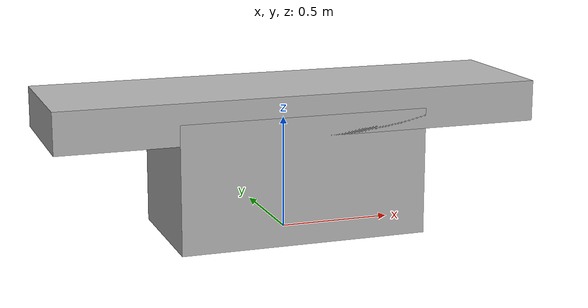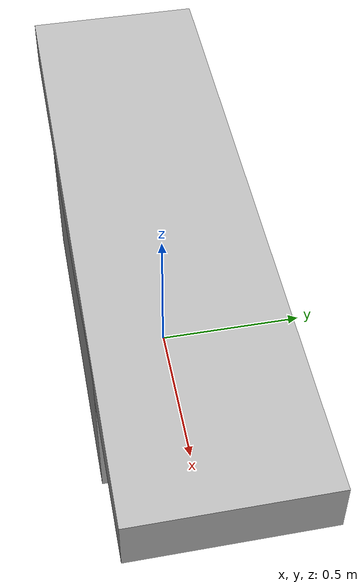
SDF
<?xml version="1.0" encoding="UTF-8"?>
<sdf version="1.4">
   <model name="simple_surgical_bed">
      <static>true</static>
      <link name="bed_slab">
         <pose>0 0 .56 0 0 0</pose>
         <collision name="bed_slab_collision">
            <geometry>
               <box>
                  <size>2.14 .6 .18</size>
               </box>
            </geometry>
         </collision>
         <visual name="bed_slab_visual">
            <geometry>
               <box>
                  <size>2.14 .6 .18</size>
               </box>
            </geometry>
         </visual>
      </link>
      <link name="bed_stand">
         <pose>0 0 .28 0 0 0</pose>
         <collision name="bed_stand_collision">
            <geometry>
               <box>
                  <size>1.1 .60 .56</size>
               </box>
            </geometry>
         </collision>
         <visual name="bed_slab_visual">
            <geometry>
               <box>
                  <size>1.1 .6 .56</size>
               </box>
            </geometry>
         </visual>
      </link>
   </model>
</sdf>
